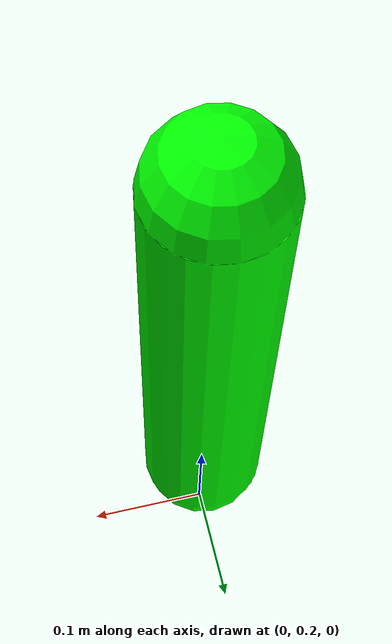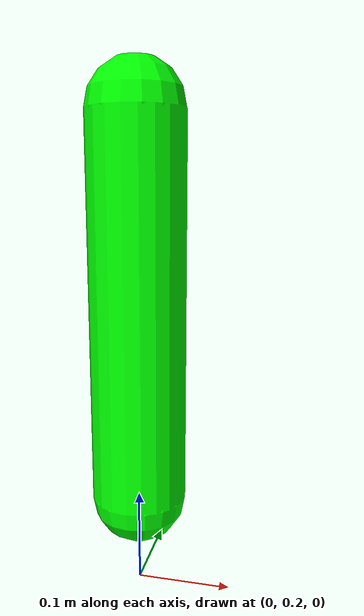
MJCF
<mujoco model="testbody"> # XML-File wird dadurch als MJCF-File erkannt

  ############################## Simulationseinstellung ##############################
  <option timestep="0.001" iterations="150" apirate="1000" gravity="0 0 -9.81" solver="Newton" tolerance="1e-10" cone="elliptic"/>

 ############################## Modellerstellung ##############################
 <worldbody>

    <body name= "b0_pylon" pos="0 0.2 0.3" euler="0 0 0"> // Kollision an mP
    <geom name="g3_pylon" type="capsule" size="0.05 0.2" pos="0 0 0" rgba="0 1.2 0.0 1"/>
    <joint type="slide" name="joint_body_x_transl" pos="0 0 0" axis="1 0 0" limited="false" stiffness="0" damping="0" frictionloss="0" />
    <joint type="slide" name="joint_body_y_transl" pos="0 0 0" axis="0 1 0" limited="false" stiffness="0" damping="0" frictionloss="0" />
  </body>

  </worldbody>

 ############################## Aktorendefinition ##############################
  <actuator>
    <position name="body_x" joint="joint_body_x_transl" kp="5000"/>
    <velocity name="body_xv" joint="joint_body_x_transl" kv="500" />
    <position name="body_y" joint="joint_body_y_transl" kp="5000"/>
    <velocity name="body_yv" joint="joint_body_y_transl" kv="500" />
  </actuator>

</mujoco>
